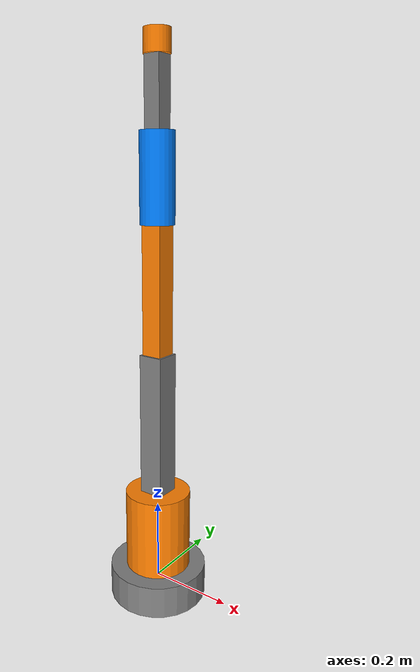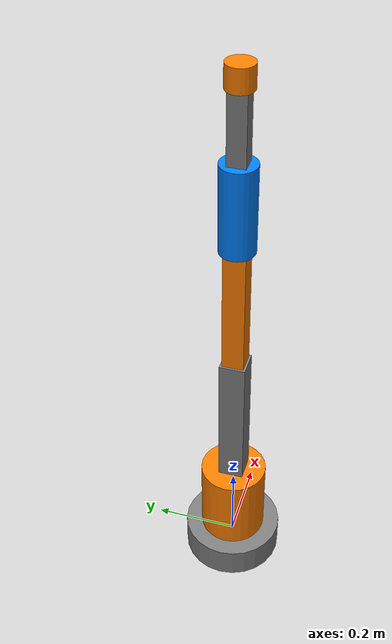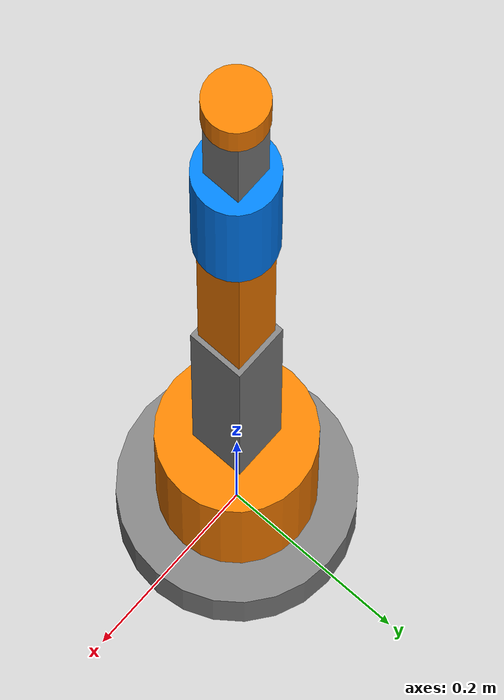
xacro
<?xml version="1.0"?>
<robot xmlns:xacro="http://www.ros.org/wiki/xacro" name="six_axis_robot">
    <xacro:arg name="initial_positions_file" default="initial_positions.yaml" />
    <!-- false: mock_components (no physics, default). true: Gazebo physics via gz_ros2_control. -->
    <xacro:arg name="use_gazebo" default="false" />

    <!-- Import six_axis_robot urdf file -->
    <xacro:include filename="$(find robot_description)/urdf/robot.urdf" />

    <!-- Import control_xacro -->
    <xacro:include filename="six_axis_robot.ros2_control.xacro" />

    <xacro:six_axis_robot_ros2_control name="FakeSystem"
                                       initial_positions_file="$(arg initial_positions_file)"
                                       use_gazebo="$(arg use_gazebo)"/>

    <link name="world"/>
    <joint name="masa" type="fixed">
        <parent link="world"/>
        <child link="base_link"/>
    </joint>

    <xacro:if value="$(arg use_gazebo)">
        <gazebo>
            <plugin filename="gz_ros2_control-system"
                    name="gz_ros2_control::GazeboSimROS2ControlPlugin">
                <parameters>$(find robot_moveit_config)/config/ros2_controllers.yaml</parameters>
            </plugin>
        </gazebo>
    </xacro:if>

</robot>

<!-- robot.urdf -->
<robot name="six_axis_robot">
  <material name="gray"><color rgba="0.5 0.5 0.5 1.0"/></material>
  <material name="orange"><color rgba="1.0 0.5 0.0 1.0"/></material>
  <material name="blue"><color rgba="0.0 0.5 1.0 1.0"/></material>

  <link name="base_link">
    <visual><geometry><cylinder radius="0.12" length="0.08"/></geometry><material name="gray"/></visual>
    <collision><geometry><cylinder radius="0.12" length="0.08"/></geometry></collision>
    <!-- placeholder mass/inertia (solid cylinder r=0.12 h=0.08 m=5); replace with real CAD values -->
    <inertial><mass value="5.0"/><inertia ixx="0.020667" ixy="0" ixz="0" iyy="0.020667" iyz="0" izz="0.036"/></inertial>
  </link>

  <link name="link_1">
    <visual><geometry><cylinder radius="0.08" length="0.2"/></geometry><material name="orange"/><origin xyz="0 0 0.1"/></visual>
    <collision><geometry><cylinder radius="0.08" length="0.2"/></geometry><origin xyz="0 0 0.1"/></collision>
    <!-- placeholder mass/inertia (solid primitive approximation); replace with real CAD values -->
    <inertial><origin xyz="0 0 0.1"/><mass value="2.0"/><inertia ixx="0.009867" ixy="0" ixz="0" iyy="0.009867" iyz="0" izz="0.006400"/></inertial>
  </link>
  <joint name="joint_1" type="revolute">
    <parent link="base_link"/><child link="link_1"/><origin xyz="0 0 0.04"/><axis xyz="0 0 1"/>
    <limit lower="-3.14" upper="3.14" effort="100" velocity="1.0"/>
  </joint>

  <link name="link_2">
    <visual><geometry><box size="0.06 0.06 0.35"/></geometry><material name="gray"/><origin xyz="0 0 0.175"/></visual>
    <collision><geometry><box size="0.06 0.06 0.35"/></geometry><origin xyz="0 0 0.175"/></collision>
    <!-- placeholder mass/inertia (solid primitive approximation); replace with real CAD values -->
    <inertial><origin xyz="0 0 0.175"/><mass value="1.5"/><inertia ixx="0.015762" ixy="0" ixz="0" iyy="0.015762" iyz="0" izz="0.000900"/></inertial>
  </link>
  <joint name="joint_2" type="revolute">
    <parent link="link_1"/><child link="link_2"/><origin xyz="0 0 0.2"/><axis xyz="0 1 0"/>
    <limit lower="-1.57" upper="1.57" effort="100" velocity="1.0"/>
  </joint>

  <link name="link_3">
    <visual><geometry><box size="0.05 0.05 0.3"/></geometry><material name="orange"/><origin xyz="0 0 0.15"/></visual>
    <collision><geometry><box size="0.05 0.05 0.3"/></geometry><origin xyz="0 0 0.15"/></collision>
    <!-- placeholder mass/inertia (solid primitive approximation); replace with real CAD values -->
    <inertial><origin xyz="0 0 0.15"/><mass value="1.0"/><inertia ixx="0.007708" ixy="0" ixz="0" iyy="0.007708" iyz="0" izz="0.000417"/></inertial>
  </link>
  <joint name="joint_3" type="revolute">
    <parent link="link_2"/><child link="link_3"/><origin xyz="0 0 0.35"/><axis xyz="0 1 0"/>
    <limit lower="-2.0" upper="2.0" effort="100" velocity="1.0"/>
  </joint>

  <link name="link_4">
    <visual><geometry><cylinder radius="0.04" length="0.2"/></geometry><material name="blue"/><origin xyz="0 0 0.1"/></visual>
    <collision><geometry><cylinder radius="0.04" length="0.2"/></geometry><origin xyz="0 0 0.1"/></collision>
    <!-- placeholder mass/inertia (solid primitive approximation); replace with real CAD values -->
    <inertial><origin xyz="0 0 0.1"/><mass value="0.6"/><inertia ixx="0.002240" ixy="0" ixz="0" iyy="0.002240" iyz="0" izz="0.000480"/></inertial>
  </link>
  <joint name="joint_4" type="revolute">
    <parent link="link_3"/><child link="link_4"/><origin xyz="0 0 0.3"/><axis xyz="0 0 1"/>
    <limit lower="-3.14" upper="3.14" effort="100" velocity="1.0"/>
  </joint>

  <link name="link_5">
    <visual><geometry><box size="0.04 0.04 0.15"/></geometry><material name="gray"/><origin xyz="0 0 0.075"/></visual>
    <collision><geometry><box size="0.04 0.04 0.15"/></geometry><origin xyz="0 0 0.075"/></collision>
    <!-- placeholder mass/inertia (solid primitive approximation); replace with real CAD values -->
    <inertial><origin xyz="0 0 0.075"/><mass value="0.4"/><inertia ixx="0.000803" ixy="0" ixz="0" iyy="0.000803" iyz="0" izz="0.000107"/></inertial>
  </link>
  <joint name="joint_5" type="revolute">
    <parent link="link_4"/><child link="link_5"/><origin xyz="0 0 0.2"/><axis xyz="0 1 0"/>
    <limit lower="-1.57" upper="1.57" effort="100" velocity="1.0"/>
  </joint>

  <link name="link_6">
    <visual><geometry><cylinder radius="0.03" length="0.05"/></geometry><material name="orange"/><origin xyz="0 0 0.025"/></visual>
    <collision><geometry><cylinder radius="0.03" length="0.05"/></geometry><origin xyz="0 0 0.025"/></collision>
    <!-- placeholder mass/inertia (solid primitive approximation); replace with real CAD values -->
    <inertial><origin xyz="0 0 0.025"/><mass value="0.2"/><inertia ixx="0.000087" ixy="0" ixz="0" iyy="0.000087" iyz="0" izz="0.000090"/></inertial>
  </link>
  <joint name="joint_6" type="revolute">
    <parent link="link_5"/><child link="link_6"/><origin xyz="0 0 0.15"/><axis xyz="0 0 1"/>
    <limit lower="-3.14" upper="3.14" effort="100" velocity="1.0"/>
  </joint>
</robot>
